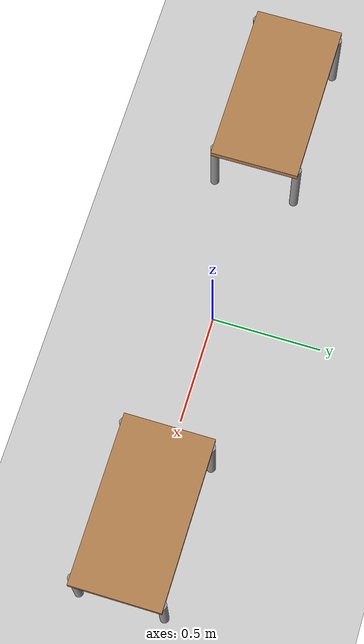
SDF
<sdf version="1.6">
 <world name="panda_world">
  <include><uri>model://sun</uri></include>
  <include><uri>model://ground_plane</uri></include>
  <include><uri>model://table</uri><pose>1 0 0 0 0 0</pose></include>
  <include><uri>model://table</uri><pose>-1 0 0 0 0 0</pose></include>
 </world>
</sdf>

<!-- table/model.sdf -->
<sdf version="1.5">
  <model name="table">
    <static>true</static>
    <link name="link">

      <!-- Piano superficie -->
      <collision name="surface">
        <pose>0 0 0.35 0 0 0</pose>
        <geometry>
          <box>
            <size>0.75 0.4 0.03</size>
          </box>
        </geometry>
        <surface>
          <friction>
            <ode>
              <mu>0.6</mu>
              <mu2>0.6</mu2>
            </ode>
          </friction>
        </surface>
      </collision>

      <visual name="visual1">
        <pose>0 0 0.35 0 0 0</pose>
        <geometry>
          <box>
            <size>0.75 0.4 0.03</size>
          </box>
        </geometry>
        <material>
          <script>
            <uri>file://media/materials/scripts/gazebo.material</uri>
            <name>Gazebo/Wood</name>
          </script>
        </material>
      </visual>

      <!-- Gambe -->

      <collision name="front_left_leg">
        <pose>0.34 0.19 0.175 0 0 0</pose>
        <geometry>
          <cylinder>
            <radius>0.02</radius>
            <length>0.35</length>
          </cylinder>
        </geometry>
      </collision>

      <visual name="front_left_leg">
        <pose>0.34 0.19 0.175 0 0 0</pose>
        <geometry>
          <cylinder>
            <radius>0.02</radius>
            <length>0.35</length>
          </cylinder>
        </geometry>
        <material>
          <script>
            <uri>file://media/materials/scripts/gazebo.material</uri>
            <name>Gazebo/Grey</name>
          </script>
        </material>
      </visual>

      <collision name="front_right_leg">
        <pose>0.34 -0.19 0.175 0 0 0</pose>
        <geometry>
          <cylinder>
            <radius>0.02</radius>
            <length>0.35</length>
          </cylinder>
        </geometry>
      </collision>

      <visual name="front_right_leg">
        <pose>0.34 -0.19 0.175 0 0 0</pose>
        <geometry>
          <cylinder>
            <radius>0.02</radius>
            <length>0.35</length>
          </cylinder>
        </geometry>
        <material>
          <script>
            <uri>file://media/materials/scripts/gazebo.material</uri>
            <name>Gazebo/Grey</name>
          </script>
        </material>
      </visual>

      <collision name="back_right_leg">
        <pose>-0.34 -0.19 0.175 0 0 0</pose>
        <geometry>
          <cylinder>
            <radius>0.02</radius>
            <length>0.35</length>
          </cylinder>
        </geometry>
      </collision>

      <visual name="back_right_leg">
        <pose>-0.34 -0.19 0.175 0 0 0</pose>
        <geometry>
          <cylinder>
            <radius>0.02</radius>
            <length>0.35</length>
          </cylinder>
        </geometry>
        <material>
          <script>
            <uri>file://media/materials/scripts/gazebo.material</uri>
            <name>Gazebo/Grey</name>
          </script>
        </material>
      </visual>

      <collision name="back_left_leg">
        <pose>-0.34 0.19 0.175 0 0 0</pose>
        <geometry>
          <cylinder>
            <radius>0.02</radius>
            <length>0.35</length>
          </cylinder>
        </geometry>
      </collision>

      <visual name="back_left_leg">
        <pose>-0.34 0.19 0.175 0 0 0</pose>
        <geometry>
          <cylinder>
            <radius>0.02</radius>
            <length>0.35</length>
          </cylinder>
        </geometry>
        <material>
          <script>
            <uri>file://media/materials/scripts/gazebo.material</uri>
            <name>Gazebo/Grey</name>
          </script>
        </material>
      </visual>

    </link>
  </model>
</sdf>
